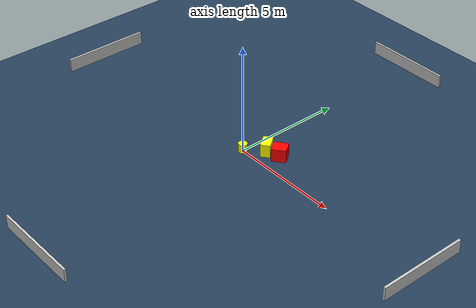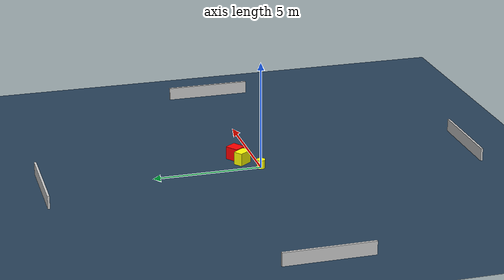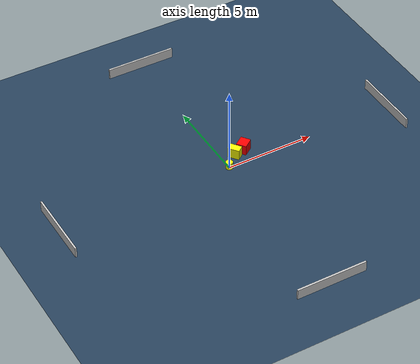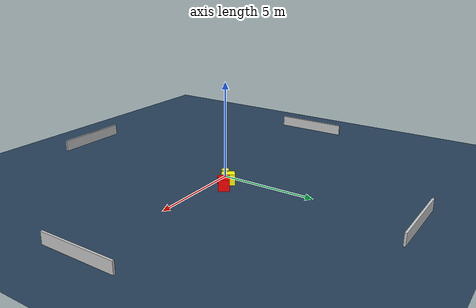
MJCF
<?xml version="1.0" ?>
<mujoco model="generated_environment">
  <option timestep="0.01" integrator="RK4" cone="elliptic"/>
  <default>
    <geom density="1"/>
  </default>
  <asset>
    <texture builtin="gradient" height="3072" name="skybox" rgb1="0.3 0.5 0.7" rgb2="0 0 0" type="skybox" width="512"/>
    <texture builtin="checker" height="300" name="groundplane" rgb1="0.2 0.3 0.4" rgb2="0.1 0.2 0.3" type="2d" width="300"/>
    <material name="groundplane" reflectance="0.2" texrepeat="5 5" texture="groundplane"/>
  </asset>
  <worldbody>
    <light dir="0 0 -1" directional="true" pos="0 0 1.5"/>
    <geom condim="3" friction="0.5 0.005 0.001" material="groundplane" name="floor" pos="0 0 0" size="0 0 0.05" type="plane"/>
    <body name="walls">
      <geom name="wall_1" condim="4" pos="-10.0 0.0 0.3" rgba="0.800000011920929 0.800000011920929 0.800000011920929 1.0" size="0.05 2.0 0.3" type="box"/>
      <geom name="wall_2" condim="4" pos="10.0 0.0 0.3" rgba="0.800000011920929 0.800000011920929 0.800000011920929 1.0" size="0.05 2.0 0.3" type="box"/>
      <geom name="wall_3" condim="4" pos="0.0 -10.0 0.3" rgba="0.800000011920929 0.800000011920929 0.800000011920929 1.0" size="2.0 0.05 0.3" type="box"/>
      <geom name="wall_4" condim="4" pos="0.0 10.0 0.3" rgba="0.800000011920929 0.800000011920929 0.800000011920929 1.0" size="2.0 0.05 0.3" type="box"/>
    </body>
    <body name="robot">
      <joint name="joint_x" type="slide" pos="0 0 0" axis="1 0 0"/>
      <joint name="joint_y" type="slide" pos="0 0 0" axis="0 1 0"/>
      <geom name="robot" type="cylinder" pos="0.0 0.0 0.2" size="0.2 0.2 0.0" mass="5.0" friction="1.0 0.005 0.0001" condim="4" rgba="1.0 1.0 0.0 1.0"/>
    </body>
    <body name="obstacle_1_movable">
      <geom name="obstacle_1_movable" condim="4" pos="0.734561081329477 0.6797292607594486 0.3" euler="0 0 127.12330163436484" friction="0.0 0.005 0.001" rgba="1.0 1.0 0.0 1.0" size="0.3338517361197785 0.2143658176045733 0.3" type="box" mass="0.1"/>
      <joint type="free"/>
    </body>
    <body name="obstacle_2_static">
      <geom name="obstacle_2_static" condim="4" pos="1.3699583102428545 0.8422310462703793 0.3" euler="0 0 216.09486317626414" friction="0.0 0.005 0.001" rgba="1.0 0.0 0.0 1.0" size="0.3217949581273355 0.2875353358525269 0.3" type="box"/>
    </body>
  </worldbody>
  <actuator>
    <motor name="actuator_x" joint="joint_x" gear="1" ctrlrange="-1 1"/>
    <motor name="actuator_y" joint="joint_y" gear="1" ctrlrange="-1 1"/>
  </actuator>
</mujoco>
